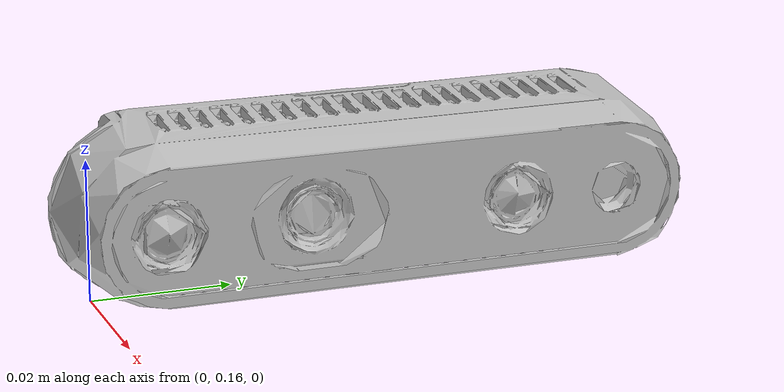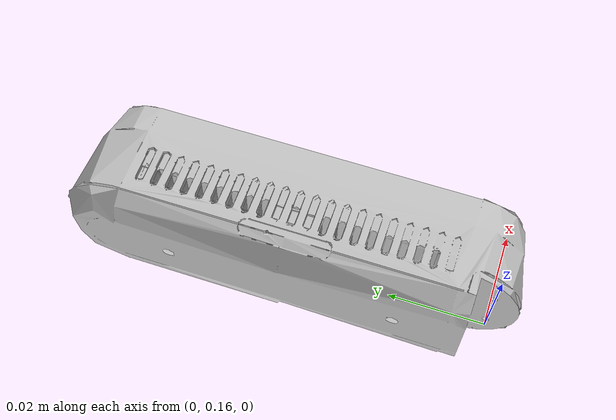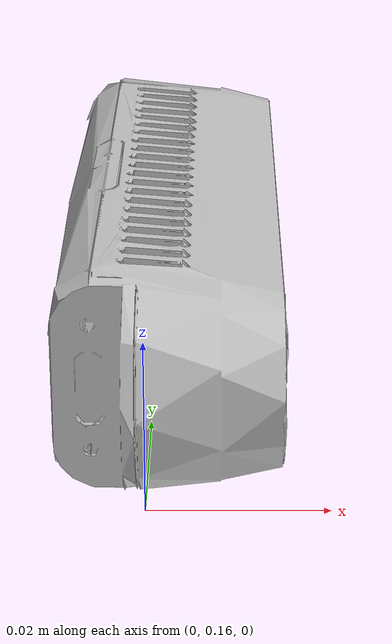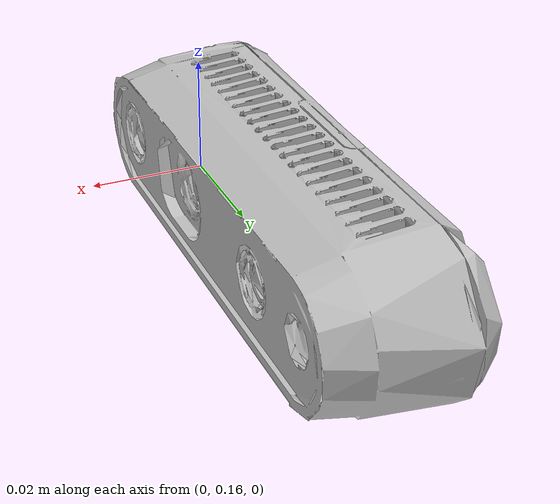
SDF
<?xml version="1.0"?>
<sdf version='1.6'>
  <model name='d435i'>
    <link name='link1'>
      <pose frame=''>0 0 0 0 -0 0</pose>
      <inertial>
        <pose frame=''>0 0.2175 0.0125 0 -0 0</pose>
        <mass>0.564</mass>
        <inertia>
          <ixx>0.00388124</ixx>
          <ixy>0</ixy>
          <ixz>0</ixz>
          <iyy>0.00049894</iyy>
          <iyz>0</iyz>
          <izz>0.00387926</izz>
        </inertia>
      </inertial>
      <collision name='link1_fixed_joint_lump__camera_link_collision'>
        <pose frame=''>0 0.2 0.0125 0 -0 0</pose>
        <geometry>
          <box>
            <size>0.02505 0.09 0.025</size>
          </box>
        </geometry>
        <surface>
          <contact>
            <ode>
              <kp>1e+13</kp>
              <kd>1</kd>
            </ode>
          </contact>
          <friction>
            <ode>
              <mu2>1</mu2>
              <fdir1>0 0 0</fdir1>
            </ode>
          </friction>
        </surface>
      </collision>
      <visual name='link1_fixed_joint_lump__camera_link_visual'>
        <pose frame=''>0.0149 0.2 0.0125 1.5708 -0 1.5708</pose>
        <geometry>
          <mesh>
            <scale>1 1 1</scale>
            <uri>model://realsense-ros/realsense2_description/meshes/d435.dae</uri>
          </mesh>
        </geometry>
        <material>
          <script>
            <uri>__default__</uri>
            <name>__default__</name>
          </script>
        </material>
      </visual>
      <gravity>1</gravity>
      <velocity_decay/>
      <self_collide>0</self_collide>
      <enable_wind>0</enable_wind>
      <kinematic>0</kinematic>
      <gravity>1</gravity>
      <sensor name='realsensecolor' type='camera'>
        <camera name='realsense'>
          <horizontal_fov>1.21126</horizontal_fov>
          <image>
            <width>1920</width>
            <height>1080</height>
            <format>RGB_INT8</format>
          </image>
          <clip>
            <near>0.1</near>
            <far>100</far>
          </clip>
          <noise>
            <type>gaussian</type>
            <mean>0</mean>
            <stddev>0.007</stddev>
          </noise>
        </camera>
        <always_on>1</always_on>
        <update_rate>30</update_rate>
        <visualize>1</visualize>
        <pose frame=''>0 0.2175 0.0125 0 -0 0</pose>
      </sensor>
      <sensor name='realsenseired1' type='camera'>
        <camera name='realsense'>
          <horizontal_fov>1.48702</horizontal_fov>
          <image>
            <width>1280</width>
            <height>720</height>
            <format>L_INT8</format>
          </image>
          <clip>
            <near>0.1</near>
            <far>100</far>
          </clip>
          <noise>
            <type>gaussian</type>
            <mean>0</mean>
            <stddev>0.05</stddev>
          </noise>
        </camera>
        <always_on>1</always_on>
        <update_rate>90</update_rate>
        <visualize>0</visualize>
        <pose frame=''>0 0.2175 0.0125 0 -0 0</pose>
      </sensor>
      <sensor name='realsenseired2' type='camera'>
        <camera name='realsense'>
          <horizontal_fov>1.48702</horizontal_fov>
          <image>
            <width>1280</width>
            <height>720</height>
            <format>L_INT8</format>
          </image>
          <clip>
            <near>0.1</near>
            <far>100</far>
          </clip>
          <noise>
            <type>gaussian</type>
            <mean>0</mean>
            <stddev>0.05</stddev>
          </noise>
        </camera>
        <always_on>1</always_on>
        <update_rate>90</update_rate>
        <visualize>0</visualize>
        <pose frame=''>0 0.2175 0.0125 0 -0 0</pose>
      </sensor>
      <sensor name='realsensedepth' type='depth'>
        <camera name='realsense'>
          <horizontal_fov>1.48702</horizontal_fov>
          <image>
            <width>1280</width>
            <height>720</height>
          </image>
          <clip>
            <near>0.1</near>
            <far>100</far>
          </clip>
          <noise>
            <type>gaussian</type>
            <mean>0</mean>
            <stddev>0.1</stddev>
          </noise>
        </camera>
        <always_on>1</always_on>
        <update_rate>90</update_rate>
        <visualize>0</visualize>
        <pose frame=''>0 0.2175 0.0125 0 -0 0</pose>
      </sensor>
      <sensor name="realsenseimu" type="imu">
        <always_on>true</always_on>
        <update_rate>100</update_rate>
        <visualize>true</visualize>
        <topic>__default_topic__</topic>
        <plugin filename="libgazebo_ros_imu_sensor.so" name="realsenseimu">
	  <robotNamespace></robotNamespace>
          <topicName>camera/imu</topicName>
          <bodyName>imu_link</bodyName>
          <updateRateHZ>10.0</updateRateHZ>
          <gaussianNoise>0.0</gaussianNoise>
          <xyzOffset>0 0 0</xyzOffset>
          <rpyOffset>0 0 0</rpyOffset>
          <frameName>imu_link</frameName>
          <initialOrientationAsReference>false</initialOrientationAsReference>
        </plugin>
        <pose>0 0 0 0 0 0</pose>
      </sensor>
    </link>
    <static>0</static>
    <plugin name='camera' filename='librealsense_gazebo_plugin.so'>
      <prefix>realsense</prefix>
      <depthUpdateRate>60.0</depthUpdateRate>
      <colorUpdateRate>60.0</colorUpdateRate>
      <infraredUpdateRate>60.0</infraredUpdateRate>
      <depthTopicName>depth/image_raw</depthTopicName>
      <depthCameraInfoTopicName>depth/camera_info</depthCameraInfoTopicName>
      <colorTopicName>color/image_raw</colorTopicName>
      <colorCameraInfoTopicName>color/camera_info</colorCameraInfoTopicName>
      <infrared1TopicName>infra1/image_raw</infrared1TopicName>
      <infrared1CameraInfoTopicName>infra1/camera_info</infrared1CameraInfoTopicName>
      <infrared2TopicName>infra2/image_raw</infrared2TopicName>
      <infrared2CameraInfoTopicName>infra2/camera_info</infrared2CameraInfoTopicName>
      <colorOpticalframeName>camera_color_optical_frame</colorOpticalframeName>
      <depthOpticalframeName>camera_depth_optical_frame</depthOpticalframeName>
      <infrared1OpticalframeName>camera_left_ir_optical_frame</infrared1OpticalframeName>
      <infrared2OpticalframeName>camera_right_ir_optical_frame</infrared2OpticalframeName>
      <rangeMinDepth>0.2</rangeMinDepth>
      <rangeMaxDepth>10.0</rangeMaxDepth>
      <pointCloud>0</pointCloud>
      <pointCloudTopicName>depth/points</pointCloudTopicName>
      <pointCloudCutoff>0.5</pointCloudCutoff>
    </plugin>
  </model>
</sdf>
